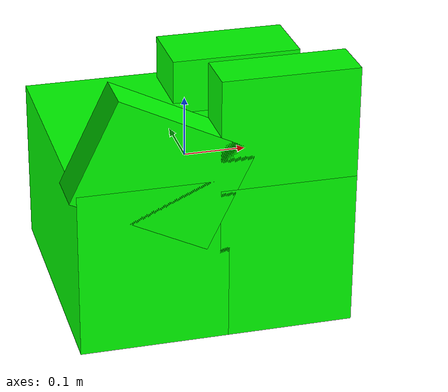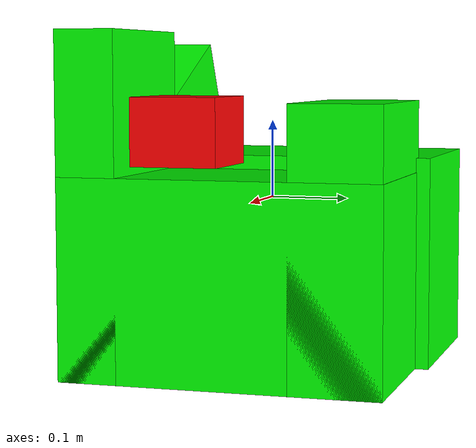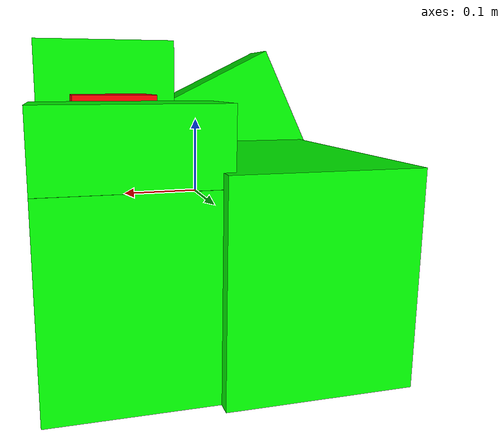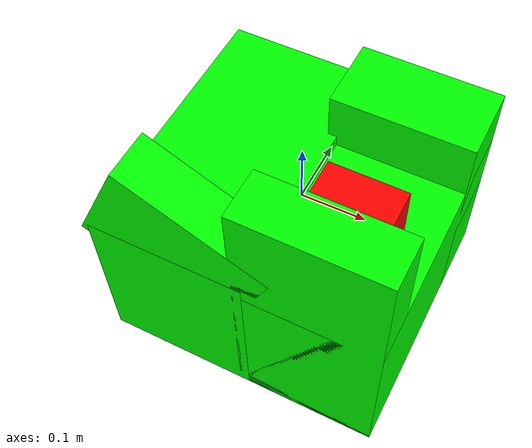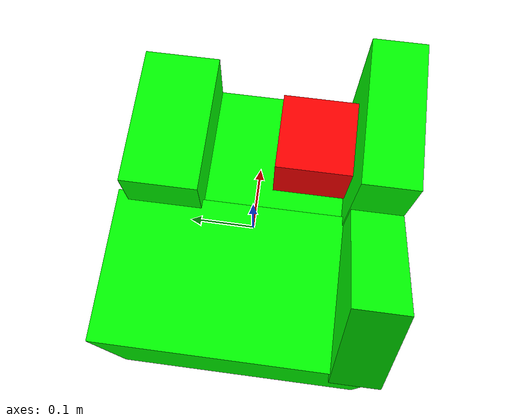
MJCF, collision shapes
<mujoco model="coffee_machine_12">
  <compiler autolimits="true" boundmass="0.01" angle="radian"/>
  <default>
    <default class="/">
      <default class="__VISUAL_MJT__">
        <geom contype="0" conaffinity="0" group="0"/>
      </default>
      <default class="__STRUCTURAL_MJT__">
        <geom contype="8" conaffinity="15" group="4" friction="0.90000000000000002 0.90000000000000002 0.001" solref="0.025000000000000001 1" solimp="0.998 0.998 0.001"/>
      </default>
      <default class="__DYNAMIC_MJT__">
        <geom contype="1" conaffinity="15" group="4" friction="0.90000000000000002 0.90000000000000002 0.001" solref="0.025000000000000001 1" solimp="0.998 0.998 0.001"/>
      </default>
    </default>
  </default>
  <asset>
    <material name="material_coffee_machine_backup_mat" class="/" specular="0.5" shininess="0.5" rgba="0.5 0.5 0.5 1"/>
    <material name="material_Coffee_Machine_Readout_Mat_Off" class="/" specular="0.5" shininess="0.5" rgba="0 0 0 1"/>
    <texture name="Coffee_Machine_Decal_Mat" type="2d" file="Coffee_Machine_Decal_AlbedoTransparency.png"/>
    <material name="material_Coffee_Machine_Decal_Mat" class="/" texture="Coffee_Machine_Decal_Mat" specular="0.5" shininess="0.5" rgba="1 1 1 1"/>
    <texture name="Coffee_Machine_Metal_Mat" type="2d" file="MetalBumpy_AlbedoTransparency.png"/>
    <material name="material_Coffee_Machine_Metal_Mat" class="/" texture="Coffee_Machine_Metal_Mat" specular="0.5" shininess="0.5" rgba="0.66176469999999998 0.66176469999999998 0.66176469999999998 1"/>
    <texture name="Coffee_Machine_Secondary2_Color_Mat" type="2d" file="BrushedIron_AlbedoTransparency.png"/>
    <material name="material_Coffee_Machine_Secondary2_Color_Mat" class="/" texture="Coffee_Machine_Secondary2_Color_Mat" specular="0.5" shininess="0.5" rgba="0.80882350000000003 0.80882350000000003 0.80882350000000003 1"/>
    <texture name="Coffee_Machine_Primary2_Color_Mat" type="2d" file="BumpyPlastic_Albedo.png"/>
    <material name="material_Coffee_Machine_Primary2_Color_Mat" class="/" texture="Coffee_Machine_Primary2_Color_Mat" specular="0.5" shininess="0.5" rgba="0.6323529 0.46849269999999998 0.29292820000000003 1"/>
    <mesh name="coffee_machine_12_coffee_machine_22_0" class="/" file="coffee_machine_12_coffee_machine_22/coffee_machine_12_coffee_machine_22_0.obj" scale="1 1 1"/>
    <mesh name="coffee_machine_12_coffee_machine_22_1" class="/" file="coffee_machine_12_coffee_machine_22/coffee_machine_12_coffee_machine_22_1.obj" scale="1 1 1"/>
    <mesh name="coffee_machine_12_coffee_machine_22_2" class="/" file="coffee_machine_12_coffee_machine_22/coffee_machine_12_coffee_machine_22_2.obj" scale="1 1 1"/>
    <mesh name="coffee_machine_12_coffee_machine_22_3" class="/" file="coffee_machine_12_coffee_machine_22/coffee_machine_12_coffee_machine_22_3.obj" scale="1 1 1"/>
    <mesh name="coffee_machine_12_coffee_machine_22_4" class="/" file="coffee_machine_12_coffee_machine_22/coffee_machine_12_coffee_machine_22_4.obj" scale="1 1 1"/>
    <mesh name="coffee_machine_12_coffee_machine_22_5" class="/" file="coffee_machine_12_coffee_machine_22/coffee_machine_12_coffee_machine_22_5.obj" scale="1 1 1"/>
  </asset>
  <worldbody>
    <body name="coffee_machine_12">
      <joint name="coffee_machine_12_free" class="/" type="free" pos="0 0 0" axis="0 0 1" stiffness="0" range="0 0" armature="0" damping="0.10000000000000001" frictionloss="0"/>
      <body name="coffee_machine_12_coffee_machine_22" pos="-0.0031700000000000001 -0.21163000000000001 -0.080449999999999994" quat="1 0 0 0">
        <geom name="coffee_machine_12_coffee_machine_22_0" class="__VISUAL_MJT__" type="mesh" material="material_coffee_machine_backup_mat" shellinertia="true" mesh="coffee_machine_12_coffee_machine_22_0"/>
        <geom name="coffee_machine_12_coffee_machine_22_1" class="__VISUAL_MJT__" type="mesh" material="material_Coffee_Machine_Readout_Mat_Off" shellinertia="false" mesh="coffee_machine_12_coffee_machine_22_1"/>
        <geom name="coffee_machine_12_coffee_machine_22_2" class="__VISUAL_MJT__" type="mesh" material="material_Coffee_Machine_Decal_Mat" shellinertia="true" mesh="coffee_machine_12_coffee_machine_22_2"/>
        <geom name="coffee_machine_12_coffee_machine_22_3" class="__VISUAL_MJT__" type="mesh" material="material_Coffee_Machine_Metal_Mat" shellinertia="false" mesh="coffee_machine_12_coffee_machine_22_3"/>
        <geom name="coffee_machine_12_coffee_machine_22_4" class="__VISUAL_MJT__" type="mesh" material="material_Coffee_Machine_Secondary2_Color_Mat" shellinertia="false" mesh="coffee_machine_12_coffee_machine_22_4"/>
        <geom name="coffee_machine_12_coffee_machine_22_5" class="__VISUAL_MJT__" type="mesh" material="material_Coffee_Machine_Primary2_Color_Mat" shellinertia="false" mesh="coffee_machine_12_coffee_machine_22_5"/>
        <site name="coffee_machine_12_Receptacle_0" class="/" type="box" rgba="1 0 0 1" size="0.058334574103355408 0.056041210889816284 0.043077416718006134" pos="0.11060000211000443 0.13104121387004852 0.1706259548664093" quat="1 0 0 0"/>
        <geom name="coffee_machine_12_PrimitiveCollider_0" class="__DYNAMIC_MJT__" type="box" size="0.11757873743772507 0.21162760257720947 0.13528148829936981" rgba="0 1 0 1" pos="-0.098400838673114777 0.21162760257720947 2.2485852241516113e-05" quat="1 0 0 0"/>
        <geom name="coffee_machine_12_PrimitiveCollider_1" class="__DYNAMIC_MJT__" type="box" size="0.11757873743772507 0.037236213684082031 0.087537206709384918" rgba="0 1 0 1" pos="-0.082870647311210632 0.03723621740937233 0.15198305249214172" quat="0.97408735752105713 2.1761924158743181e-16 0.22617238759994507 2.6961847865436539e-08"/>
        <geom name="coffee_machine_12_PrimitiveCollider_2" class="__DYNAMIC_MJT__" type="box" size="0.10786938667297363 0.20313191413879395 0.12617914378643036" rgba="0 1 0 1" pos="0.1127769947052002 0.20313191413879395 -0.009079858660697937" quat="1 0 0 0"/>
        <geom name="coffee_machine_12_PrimitiveCollider_3" class="__DYNAMIC_MJT__" type="box" size="0.10786938667297363 0.038073241710662842 0.2157091349363327" rgba="0 1 0 1" pos="0.1127769947052002 0.038073241710662842 0.080450132489204407" quat="1 0 0 0"/>
        <geom name="coffee_machine_12_PrimitiveCollider_4" class="__DYNAMIC_MJT__" type="box" size="0.10786938667297363 0.057032108306884766 0.1718861311674118" rgba="0 1 0 1" pos="0.1127769947052002 0.3485637903213501 0.036627128720283508" quat="1 0 0 0"/>
      </body>
    </body>
  </worldbody>
</mujoco>
